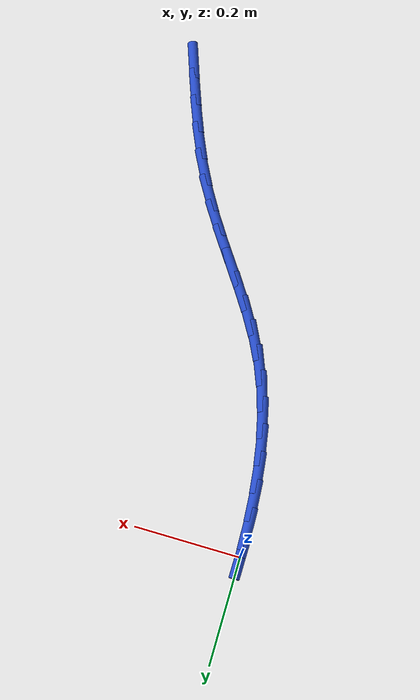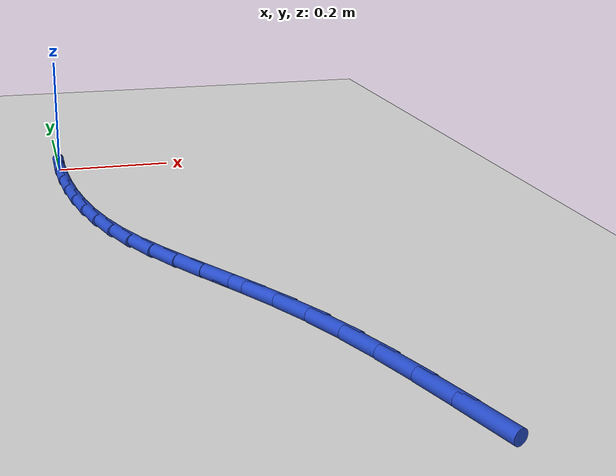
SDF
<sdf version="1.6">
 <world name="default">
  <model name="ground_plane">
   <static>1</static>
   <link name="link">
    <collision name="collision">
     <geometry><plane><normal>0 0 1</normal><size>100 100</size></plane></geometry>
     <surface><friction><ode><mu>100</mu><mu2>50</mu2></ode></friction></surface>
    </collision>
    <visual name="visual">
     <cast_shadows>0</cast_shadows>
     <geometry><plane><normal>0 0 1</normal><size>100 100</size></plane></geometry>
     <material>
      <script><uri>file://media/materials/scripts/gazebo.material</uri><name>Gazebo/WhiteGlow</name></script>
     </material>
    </visual>
   </link>
  </model>
  <model name="line">
   <link name="link_0">
    <pose>5.204170427930421e-18 -8.326672684688674e-17 0.01 0 1.57 1.5625860259602238</pose>
    <collision name="collision">
     <geometry><cylinder><radius>0.01</radius><length>0.08</length></cylinder></geometry>
    </collision>
    <visual name="visual">
     <material>
      <script><name>Gazebo/Blue</name><uri>file://media/materials/scripts/gazebo.material</uri></script>
     </material>
     <geometry><cylinder><radius>0.01</radius><length>0.08</length></cylinder></geometry>
    </visual>
   </link>
   <link name="link_151">
    <pose>0.36077619050042636 -0.9188421664447506 0.01 0 1.57 -1.230091108187157</pose>
    <collision name="collision">
     <geometry><cylinder><radius>0.01</radius><length>0.08</length></cylinder></geometry>
    </collision>
    <visual name="visual">
     <material>
      <script><name>Gazebo/Blue</name><uri>file://media/materials/scripts/gazebo.material</uri></script>
     </material>
     <geometry><cylinder><radius>0.01</radius><length>0.08</length></cylinder></geometry>
    </visual>
   </link>
   <link name="link_152">
    <pose>0.34136908554801937 -0.8641018751620093 0.01 0 1.57 -1.2160216693570776</pose>
    <collision name="collision">
     <geometry><cylinder><radius>0.01</radius><length>0.08</length></cylinder></geometry>
    </collision>
    <visual name="visual">
     <material>
      <script><name>Gazebo/Blue</name><uri>file://media/materials/scripts/gazebo.material</uri></script>
     </material>
     <geometry><cylinder><radius>0.01</radius><length>0.08</length></cylinder></geometry>
    </visual>
   </link>
   <link name="link_153">
    <pose>0.32122935383565804 -0.809736118426514 0.01 0 1.57 -1.1892997088290054</pose>
    <collision name="collision">
     <geometry><cylinder><radius>0.01</radius><length>0.08</length></cylinder></geometry>
    </collision>
    <visual name="visual">
     <material>
      <script><name>Gazebo/Blue</name><uri>file://media/materials/scripts/gazebo.material</uri></script>
     </material>
     <geometry><cylinder><radius>0.01</radius><length>0.08</length></cylinder></geometry>
    </visual>
   </link>
   <link name="link_154">
    <pose>0.2998725001563865 -0.7564969317514788 0.01 0 1.57 -1.148813688902464</pose>
    <collision name="collision">
     <geometry><cylinder><radius>0.01</radius><length>0.08</length></cylinder></geometry>
    </collision>
    <visual name="visual">
     <material>
      <script><name>Gazebo/Blue</name><uri>file://media/materials/scripts/gazebo.material</uri></script>
     </material>
     <geometry><cylinder><radius>0.01</radius><length>0.08</length></cylinder></geometry>
    </visual>
   </link>
   <link name="link_155">
    <pose>0.2768140293032479 -0.7051363506501148 0.01 0 1.57 -1.0930861267800445</pose>
    <collision name="collision">
     <geometry><cylinder><radius>0.01</radius><length>0.08</length></cylinder></geometry>
    </collision>
    <visual name="visual">
     <material>
      <script><name>Gazebo/Blue</name><uri>file://media/materials/scripts/gazebo.material</uri></script>
     </material>
     <geometry><cylinder><radius>0.01</radius><length>0.08</length></cylinder></geometry>
    </visual>
   </link>
   <link name="link_156">
    <pose>0.2515802521127105 -0.6563946320324543 0.01 0 1.57 -1.0340195292215109</pose>
    <collision name="collision">
     <geometry><cylinder><radius>0.01</radius><length>0.08</length></cylinder></geometry>
    </collision>
    <visual name="visual">
     <material>
      <script><name>Gazebo/Blue</name><uri>file://media/materials/scripts/gazebo.material</uri></script>
     </material>
     <geometry><cylinder><radius>0.01</radius><length>0.08</length></cylinder></geometry>
    </visual>
   </link>
   <link name="link_157">
    <pose>0.22422977707236194 -0.610431827588205 0.01 0 1.57 -0.9922283762829994</pose>
    <collision name="collision">
     <geometry><cylinder><radius>0.01</radius><length>0.08</length></cylinder></geometry>
    </collision>
    <visual name="visual">
     <material>
      <script><name>Gazebo/Blue</name><uri>file://media/materials/scripts/gazebo.material</uri></script>
     </material>
     <geometry><cylinder><radius>0.01</radius><length>0.08</length></cylinder></geometry>
    </visual>
   </link>
   <link name="link_158">
    <pose>0.19558567031739402 -0.5665747290501216 0.01 0 1.57 -0.9710019420617192</pose>
    <collision name="collision">
     <geometry><cylinder><radius>0.01</radius><length>0.08</length></cylinder></geometry>
    </collision>
    <visual name="visual">
     <material>
      <script><name>Gazebo/Blue</name><uri>file://media/materials/scripts/gazebo.material</uri></script>
     </material>
     <geometry><cylinder><radius>0.01</radius><length>0.08</length></cylinder></geometry>
    </visual>
   </link>
   <link name="link_159">
    <pose>0.16653015149993403 -0.5240856507307564 0.01 0 1.57 -0.9716494812319751</pose>
    <collision name="collision">
     <geometry><cylinder><radius>0.01</radius><length>0.08</length></cylinder></geometry>
    </collision>
    <visual name="visual">
     <material>
      <script><name>Gazebo/Blue</name><uri>file://media/materials/scripts/gazebo.material</uri></script>
     </material>
     <geometry><cylinder><radius>0.01</radius><length>0.08</length></cylinder></geometry>
    </visual>
   </link>
   <link name="link_160">
    <pose>0.13794544027210737 -0.4822269069426592 0.01 0 1.57 -0.9951967101260176</pose>
    <collision name="collision">
     <geometry><cylinder><radius>0.01</radius><length>0.08</length></cylinder></geometry>
    </collision>
    <visual name="visual">
     <material>
      <script><name>Gazebo/Blue</name><uri>file://media/materials/scripts/gazebo.material</uri></script>
     </material>
     <geometry><cylinder><radius>0.01</radius><length>0.08</length></cylinder></geometry>
    </visual>
   </link>
   <link name="link_161">
    <pose>0.1107137562860401 -0.4402608119983802 0.01 0 1.57 -1.042316303995242</pose>
    <collision name="collision">
     <geometry><cylinder><radius>0.01</radius><length>0.08</length></cylinder></geometry>
    </collision>
    <visual name="visual">
     <material>
      <script><name>Gazebo/Blue</name><uri>file://media/materials/scripts/gazebo.material</uri></script>
     </material>
     <geometry><cylinder><radius>0.01</radius><length>0.08</length></cylinder></geometry>
    </visual>
   </link>
   <link name="link_162">
    <pose>0.08571731919385824 -0.39744968021047017 0.01 0 1.57 -1.1128647857106666</pose>
    <collision name="collision">
     <geometry><cylinder><radius>0.01</radius><length>0.08</length></cylinder></geometry>
    </collision>
    <visual name="visual">
     <material>
      <script><name>Gazebo/Blue</name><uri>file://media/materials/scripts/gazebo.material</uri></script>
     </material>
     <geometry><cylinder><radius>0.01</radius><length>0.08</length></cylinder></geometry>
    </visual>
   </link>
   <link name="link_163">
    <pose>0.06383719435450008 -0.35305685050338426 0.01 0 1.57 -1.1972437841073917</pose>
    <collision name="collision">
     <geometry><cylinder><radius>0.01</radius><length>0.08</length></cylinder></geometry>
    </collision>
    <visual name="visual">
     <material>
      <script><name>Gazebo/Blue</name><uri>file://media/materials/scripts/gazebo.material</uri></script>
     </material>
     <geometry><cylinder><radius>0.01</radius><length>0.08</length></cylinder></geometry>
    </visual>
   </link>
   <link name="link_164">
    <pose>0.04563842410315163 -0.30662618061260677 0.01 0 1.57 -1.2752222039983598</pose>
    <collision name="collision">
     <geometry><cylinder><radius>0.01</radius><length>0.08</length></cylinder></geometry>
    </collision>
    <visual name="visual">
     <material>
      <script><name>Gazebo/Blue</name><uri>file://media/materials/scripts/gazebo.material</uri></script>
     </material>
     <geometry><cylinder><radius>0.01</radius><length>0.08</length></cylinder></geometry>
    </visual>
   </link>
   <link name="link_165">
    <pose>0.03094223041723997 -0.2583617827066606 0.01 0 1.57 -1.3442409515326987</pose>
    <collision name="collision">
     <geometry><cylinder><radius>0.01</radius><length>0.08</length></cylinder></geometry>
    </collision>
    <visual name="visual">
     <material>
      <script><name>Gazebo/Blue</name><uri>file://media/materials/scripts/gazebo.material</uri></script>
     </material>
     <geometry><cylinder><radius>0.01</radius><length>0.08</length></cylinder></geometry>
    </visual>
   </link>
   <link name="link_166">
    <pose>0.019462901569072717 -0.2085626889869914 0.01 0 1.57 -1.4048397332168459</pose>
    <collision name="collision">
     <geometry><cylinder><radius>0.01</radius><length>0.08</length></cylinder></geometry>
    </collision>
    <visual name="visual">
     <material>
      <script><name>Gazebo/Blue</name><uri>file://media/materials/scripts/gazebo.material</uri></script>
     </material>
     <geometry><cylinder><radius>0.01</radius><length>0.08</length></cylinder></geometry>
    </visual>
   </link>
   <link name="link_167">
    <pose>0.010914725830957482 -0.15752793165504497 0.01 0 1.57 -1.4577043335600426</pose>
    <collision name="collision">
     <geometry><cylinder><radius>0.01</radius><length>0.08</length></cylinder></geometry>
    </collision>
    <visual name="visual">
     <material>
      <script><name>Gazebo/Blue</name><uri>file://media/materials/scripts/gazebo.material</uri></script>
     </material>
     <geometry><cylinder><radius>0.01</radius><length>0.08</length></cylinder></geometry>
    </visual>
   </link>
   <link name="link_168">
    <pose>0.005011991475201789 -0.1055565429122662 0.01 0 1.57 -1.503551869995335</pose>
    <collision name="collision">
     <geometry><cylinder><radius>0.01</radius><length>0.08</length></cylinder></geometry>
    </collision>
    <visual name="visual">
     <material>
      <script><name>Gazebo/Blue</name><uri>file://media/materials/scripts/gazebo.material</uri></script>
     </material>
     <geometry><cylinder><radius>0.01</radius><length>0.08</length></cylinder></geometry>
    </visual>
   </link>
   <link name="link_169">
    <pose>0.0014689867741134693 -0.052947554960102894 0.01 0 1.57 -1.5430592568459103</pose>
    <collision name="collision">
     <geometry><cylinder><radius>0.01</radius><length>0.08</length></cylinder></geometry>
    </collision>
    <visual name="visual">
     <material>
      <script><name>Gazebo/Blue</name><uri>file://media/materials/scripts/gazebo.material</uri></script>
     </material>
     <geometry><cylinder><radius>0.01</radius><length>0.08</length></cylinder></geometry>
    </visual>
   </link>
   <link name="link_170">
    <pose>-5.204170427930421e-18 1.1102230246251565e-16 0.01 0 1.57 1.5647700369744872</pose>
    <collision name="collision">
     <geometry><cylinder><radius>0.01</radius><length>0.08</length></cylinder></geometry>
    </collision>
    <visual name="visual">
     <material>
      <script><name>Gazebo/Blue</name><uri>file://media/materials/scripts/gazebo.material</uri></script>
     </material>
     <geometry><cylinder><radius>0.01</radius><length>0.08</length></cylinder></geometry>
    </visual>
   </link>
  </model>
 </world>
</sdf>
